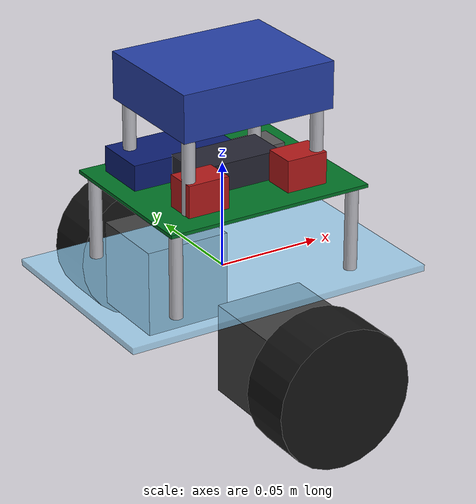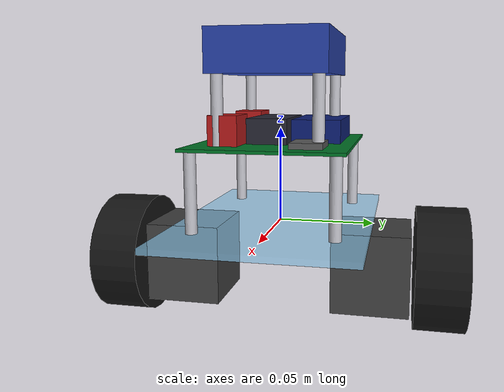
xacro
<?xml version="1.0"?>
<robot xmlns:xacro="http://www.ros.org/wiki/xacro" name="balance_robot">

  <!--                     THÔNG SỐ ROBOT (Properties)              -->

  <!-- Tấm mica (Base Plate) - 150mm x 100mm x 3mm -->
  <xacro:property name="base_length"    value="0.150"/>
  <xacro:property name="base_width"     value="0.100"/>
  <xacro:property name="base_thickness" value="0.003"/>
  <xacro:property name="base_mass"      value="0.055"/>

  <!-- Động cơ bước NEMA17 (Stepper Motor) - 42mm x 42mm x 40mm -->
  <xacro:property name="motor_face"  value="0.042"/>
  <xacro:property name="motor_depth" value="0.040"/>
  <xacro:property name="motor_mass"  value="0.280"/>

  <!-- Bánh xe cao su (Rubber Wheels) - đường kính 65mm, rộng 26mm -->
  <xacro:property name="wheel_radius" value="0.0325"/>
  <xacro:property name="wheel_width"  value="0.026"/>
  <xacro:property name="wheel_mass"   value="0.035"/>

  <!-- Trụ đỡ tầng 1 (Layer 1 Standoffs) - cao 40mm, đường kính 6mm -->
  <xacro:property name="standoff1_height" value="0.040"/>
  <xacro:property name="standoff_radius"  value="0.003"/>
  <xacro:property name="standoff_mass"    value="0.005"/>

  <!-- Trụ đỡ tầng 2 (Layer 2 Standoffs) - cao 35mm -->
  <xacro:property name="standoff2_height" value="0.035"/>

  <!-- Bảng mạch PCB + toàn bộ linh kiện (Layer 1) -->
  <!--   PCB=30g + ESP32=10g + MPU6050=3g + 2xA4988=30g + LM2596=12g = 85g -->
  <xacro:property name="pcb_length"       value="0.100"/>
  <xacro:property name="pcb_width"        value="0.080"/>
  <xacro:property name="pcb_thickness"    value="0.0016"/>
  <xacro:property name="electronics_mass" value="0.085"/>

  <!-- Khung pin + 2x Pin 18650 (Battery - Layer 2) -->
  <xacro:property name="battery_length" value="0.075"/>
  <xacro:property name="battery_width"  value="0.060"/>
  <xacro:property name="battery_height" value="0.022"/>
  <xacro:property name="battery_mass"   value="0.120"/>

  <!-- ============ Giá trị tính toán (Derived values) ============ -->
  <xacro:property name="motor_z" value="${-(base_thickness/2 + motor_face/2)}"/>
  <xacro:property name="wheel_y_gap"        value="0.002"/>
  <xacro:property name="wheel_y_from_motor" value="${motor_depth/2 + wheel_width/2 + wheel_y_gap}"/>
  <xacro:property name="layer1_z"          value="${base_thickness/2 + standoff1_height + pcb_thickness/2}"/>
  <xacro:property name="layer2_z_from_pcb" value="${pcb_thickness/2 + standoff2_height + battery_height/2}"/>
  <xacro:property name="wheel_track" value="${2*(base_width/2 + wheel_y_from_motor)}"/>
  <xacro:property name="ground_clearance" value="${base_thickness/2 + motor_face/2 + wheel_radius}"/>

  <!--                      MÀU SẮC (Materials)                    -->

  <material name="mica_clear_blue">
    <color rgba="0.6 0.85 1.0 0.7"/>
  </material>
  <material name="motor_dark_gray">
    <color rgba="0.25 0.25 0.25 1.0"/>
  </material>
  <material name="wheel_black">
    <color rgba="0.08 0.08 0.08 1.0"/>
  </material>
  <material name="pcb_green">
    <color rgba="0.0 0.45 0.15 1.0"/>
  </material>
  <material name="esp32_navy">
    <color rgba="0.05 0.12 0.45 1.0"/>
  </material>
  <material name="component_gray">
    <color rgba="0.35 0.35 0.35 1.0"/>
  </material>
  <material name="driver_red">
    <color rgba="0.7 0.1 0.1 1.0"/>
  </material>
  <material name="battery_blue">
    <color rgba="0.15 0.25 0.65 1.0"/>
  </material>
  <material name="standoff_silver">
    <color rgba="0.75 0.75 0.78 1.0"/>
  </material>
  <material name="buck_dark">
    <color rgba="0.15 0.15 0.2 1.0"/>
  </material>

  <!--                   MACRO QUÁN TÍNH (Inertia)                  -->

  <xacro:macro name="box_inertia" params="m x y z">
    <inertial>
      <mass value="${m}"/>
      <inertia ixx="${m/12*(y*y+z*z)}" ixy="0.0" ixz="0.0"
               iyy="${m/12*(x*x+z*z)}" iyz="0.0"
               izz="${m/12*(x*x+y*y)}"/>
    </inertial>
  </xacro:macro>

  <xacro:macro name="wheel_inertia" params="m r h">
    <inertial>
      <mass value="${m}"/>
      <inertia ixx="${m/12*(3*r*r+h*h)}" ixy="0.0" ixz="0.0"
               iyy="${m*r*r/2}"           iyz="0.0"
               izz="${m/12*(3*r*r+h*h)}"/>
    </inertial>
  </xacro:macro>

  <xacro:macro name="cylinder_inertia_z" params="m r h">
    <inertial>
      <mass value="${m}"/>
      <inertia ixx="${m/12*(3*r*r+h*h)}" ixy="0.0" ixz="0.0"
               iyy="${m/12*(3*r*r+h*h)}" iyz="0.0"
               izz="${m*r*r/2}"/>
    </inertial>
  </xacro:macro>

  <!--             MACRO CỤM BÁNH XE (Wheel Assembly)              -->

  <xacro:macro name="wheel_assembly" params="side reflect">

    <!-- Motor Link (Thân động cơ bước NEMA17) -->
    <link name="${side}_motor_link">
      <visual>
        <geometry>
          <box size="${motor_face} ${motor_depth} ${motor_face}"/>
        </geometry>
        <material name="motor_dark_gray"/>
      </visual>
      <collision>
        <geometry>
          <box size="${motor_face} ${motor_depth} ${motor_face}"/>
        </geometry>
      </collision>
      <xacro:box_inertia m="${motor_mass}"
                          x="${motor_face}" y="${motor_depth}" z="${motor_face}"/>
    </link>

    <joint name="${side}_motor_joint" type="fixed">
      <parent link="base_link"/>
      <child  link="${side}_motor_link"/>
      <origin xyz="0 ${reflect * base_width/2} ${motor_z}" rpy="0 0 0"/>
    </joint>

    <!-- Wheel Link (Bánh xe cao su) -->
    <link name="${side}_wheel_link">
      <visual>
        <origin xyz="0 0 0" rpy="${pi/2} 0 0"/>
        <geometry>
          <cylinder radius="${wheel_radius}" length="${wheel_width}"/>
        </geometry>
        <material name="wheel_black"/>
      </visual>
      <collision>
        <origin xyz="0 0 0" rpy="${pi/2} 0 0"/>
        <geometry>
          <cylinder radius="${wheel_radius}" length="${wheel_width}"/>
        </geometry>
      </collision>
      <xacro:wheel_inertia m="${wheel_mass}" r="${wheel_radius}" h="${wheel_width}"/>
    </link>

    <joint name="${side}_wheel_joint" type="continuous">
      <parent link="${side}_motor_link"/>
      <child  link="${side}_wheel_link"/>
      <origin xyz="0 ${reflect * wheel_y_from_motor} 0" rpy="0 0 0"/>
      <axis xyz="0 1 0"/>
      <dynamics damping="0.005" friction="0.05"/>
    </joint>

    <!-- Gazebo: thuộc tính vật lý bánh xe -->
    <gazebo reference="${side}_wheel_link">
      <mu1>1.5</mu1>
      <mu2>1.0</mu2>
      <kp>1000000.0</kp>
      <kd>100.0</kd>
      <material>Gazebo/DarkGrey</material>
    </gazebo>

    <gazebo reference="${side}_motor_link">
      <material>Gazebo/Grey</material>
    </gazebo>

  </xacro:macro>

  <!--                 MACRO TRỤ ĐỠ (Standoff)                     -->

  <xacro:macro name="standoff_link" params="name parent_link px py pz height">
    <link name="${name}">
      <visual>
        <geometry>
          <cylinder radius="${standoff_radius}" length="${height}"/>
        </geometry>
        <material name="standoff_silver"/>
      </visual>
      <collision>
        <geometry>
          <cylinder radius="${standoff_radius}" length="${height}"/>
        </geometry>
      </collision>
      <xacro:cylinder_inertia_z m="${standoff_mass}" r="${standoff_radius}" h="${height}"/>
    </link>
    <joint name="${name}_joint" type="fixed">
      <parent link="${parent_link}"/>
      <child  link="${name}"/>
      <origin xyz="${px} ${py} ${pz}" rpy="0 0 0"/>
    </joint>
    <gazebo reference="${name}">
      <material>Gazebo/Grey</material>
    </gazebo>
  </xacro:macro>

  <!--                      THÂN ROBOT (Body)                       -->

  <!-- ====== ĐẾ: BASE LINK (Tấm mica) ====== -->
  <link name="base_link">
    <visual>
      <geometry>
        <box size="${base_length} ${base_width} ${base_thickness}"/>
      </geometry>
      <material name="mica_clear_blue"/>
    </visual>
    <collision>
      <geometry>
        <box size="${base_length} ${base_width} ${base_thickness}"/>
      </geometry>
    </collision>
    <xacro:box_inertia m="${base_mass}"
                        x="${base_length}" y="${base_width}" z="${base_thickness}"/>
  </link>

  <gazebo reference="base_link">
    <material>Gazebo/BlueTransparent</material>
  </gazebo>

  <!-- ====== CỤM BÁNH XE TRÁI VÀ PHẢI ====== -->
  <xacro:wheel_assembly side="left"  reflect="1"/>
  <xacro:wheel_assembly side="right" reflect="-1"/>

  <!-- ====== TRỤ ĐỠ TẦNG 1 (4 trụ từ đế lên PCB) ====== -->
  <xacro:property name="so1_x" value="${pcb_length/2 - 0.005}"/>
  <xacro:property name="so1_y" value="${pcb_width/2  - 0.005}"/>
  <xacro:property name="so1_z" value="${base_thickness/2 + standoff1_height/2}"/>

  <xacro:standoff_link name="standoff_l1_fl" parent_link="base_link"
      px="${so1_x}"  py="${so1_y}"  pz="${so1_z}" height="${standoff1_height}"/>
  <xacro:standoff_link name="standoff_l1_fr" parent_link="base_link"
      px="${so1_x}"  py="${-so1_y}" pz="${so1_z}" height="${standoff1_height}"/>
  <xacro:standoff_link name="standoff_l1_bl" parent_link="base_link"
      px="${-so1_x}" py="${so1_y}"  pz="${so1_z}" height="${standoff1_height}"/>
  <xacro:standoff_link name="standoff_l1_br" parent_link="base_link"
      px="${-so1_x}" py="${-so1_y}" pz="${so1_z}" height="${standoff1_height}"/>

  <!-- ====== TẦNG 1: PCB + LINH KIỆN ĐIỆN TỬ ====== -->
  <link name="pcb_link">
    <!-- Bảng đồng PCB -->
    <visual>
      <geometry>
        <box size="${pcb_length} ${pcb_width} ${pcb_thickness}"/>
      </geometry>
      <material name="pcb_green"/>
    </visual>

    <!-- ESP32 DevKit Module (~51mm x 26mm x 12mm) -->
    <visual>
      <origin xyz="-0.015 0.020 ${pcb_thickness/2 + 0.006}" rpy="0 0 0"/>
      <geometry>
        <box size="0.051 0.026 0.012"/>
      </geometry>
      <material name="esp32_navy"/>
    </visual>

    <!-- MPU6050 Breakout Board (~21mm x 16mm x 3mm) -->
    <visual>
      <origin xyz="0.030 0.020 ${pcb_thickness/2 + 0.0015}" rpy="0 0 0"/>
      <geometry>
        <box size="0.021 0.016 0.003"/>
      </geometry>
      <material name="component_gray"/>
    </visual>

    <!-- Mạch điều khiển động cơ 1 - A4988 (~20mm x 15mm x 15mm) -->
    <visual>
      <origin xyz="-0.025 -0.022 ${pcb_thickness/2 + 0.0075}" rpy="0 0 0"/>
      <geometry>
        <box size="0.020 0.015 0.015"/>
      </geometry>
      <material name="driver_red"/>
    </visual>

    <!-- Mạch điều khiển động cơ 2 - A4988 (~20mm x 15mm x 15mm) -->
    <visual>
      <origin xyz="0.025 -0.022 ${pcb_thickness/2 + 0.0075}" rpy="0 0 0"/>
      <geometry>
        <box size="0.020 0.015 0.015"/>
      </geometry>
      <material name="driver_red"/>
    </visual>

    <!-- Mạch giảm áp LM2596 (~43mm x 21mm x 13mm) -->
    <visual>
      <origin xyz="0.000 -0.003 ${pcb_thickness/2 + 0.0065}" rpy="0 0 0"/>
      <geometry>
        <box size="0.043 0.021 0.013"/>
      </geometry>
      <material name="buck_dark"/>
    </visual>

    <!-- Collision đơn giản -->
    <collision>
      <origin xyz="0 0 0.009" rpy="0 0 0"/>
      <geometry>
        <box size="${pcb_length} ${pcb_width} 0.022"/>
      </geometry>
    </collision>

    <xacro:box_inertia m="${electronics_mass}"
                        x="${pcb_length}" y="${pcb_width}" z="0.022"/>
  </link>

  <joint name="pcb_joint" type="fixed">
    <parent link="base_link"/>
    <child  link="pcb_link"/>
    <origin xyz="0 0 ${layer1_z}" rpy="0 0 0"/>
  </joint>

  <gazebo reference="pcb_link">
    <material>Gazebo/Green</material>
  </gazebo>

  <!-- ====== IMU LINK (Khung tọa độ cảm biến MPU6050) ====== -->
  <link name="imu_link">
    <inertial>
      <mass value="0.001"/>
      <inertia ixx="0.0000001" ixy="0.0" ixz="0.0"
               iyy="0.0000001" iyz="0.0"
               izz="0.0000001"/>
    </inertial>
  </link>

  <joint name="imu_joint" type="fixed">
    <parent link="pcb_link"/>
    <child  link="imu_link"/>
    <origin xyz="0.030 0.020 ${pcb_thickness/2 + 0.003}" rpy="0 0 0"/>
  </joint>

  <gazebo reference="imu_joint">
    <preserveFixedJoint>true</preserveFixedJoint>
  </gazebo>

  <!-- ====== TRỤ ĐỠ TẦNG 2 (4 trụ từ PCB lên khung pin) ====== -->
  <xacro:property name="so2_x" value="${battery_length/2 - 0.005}"/>
  <xacro:property name="so2_y" value="${battery_width/2  - 0.005}"/>
  <xacro:property name="so2_z" value="${pcb_thickness/2 + standoff2_height/2}"/>

  <xacro:standoff_link name="standoff_l2_fl" parent_link="pcb_link"
      px="${so2_x}"  py="${so2_y}"  pz="${so2_z}" height="${standoff2_height}"/>
  <xacro:standoff_link name="standoff_l2_fr" parent_link="pcb_link"
      px="${so2_x}"  py="${-so2_y}" pz="${so2_z}" height="${standoff2_height}"/>
  <xacro:standoff_link name="standoff_l2_bl" parent_link="pcb_link"
      px="${-so2_x}" py="${so2_y}"  pz="${so2_z}" height="${standoff2_height}"/>
  <xacro:standoff_link name="standoff_l2_br" parent_link="pcb_link"
      px="${-so2_x}" py="${-so2_y}" pz="${so2_z}" height="${standoff2_height}"/>

  <!-- ====== TẦNG 2: KHUNG PIN + PIN 18650 ====== -->
  <link name="battery_link">
    <visual>
      <geometry>
        <box size="${battery_length} ${battery_width} ${battery_height}"/>
      </geometry>
      <material name="battery_blue"/>
    </visual>
    <collision>
      <geometry>
        <box size="${battery_length} ${battery_width} ${battery_height}"/>
      </geometry>
    </collision>
    <xacro:box_inertia m="${battery_mass}"
                        x="${battery_length}" y="${battery_width}" z="${battery_height}"/>
  </link>

  <joint name="battery_joint" type="fixed">
    <parent link="pcb_link"/>
    <child  link="battery_link"/>
    <origin xyz="0 0 ${layer2_z_from_pcb}" rpy="0 0 0"/>
  </joint>

  <gazebo reference="battery_link">
    <material>Gazebo/Blue</material>
  </gazebo>

  <!--                  GAZEBO PLUGINS (ROS2 Foxy)                  -->

  <!--
    CẢM BIẾN IMU (MPU6050)
    Topic xuất: /imu/data  (sensor_msgs/msg/Imu)
    Tần số: 100 Hz
  -->
  <gazebo reference="imu_link">
    <gravity>true</gravity>
    <sensor name="imu_sensor" type="imu">
      <always_on>true</always_on>
      <update_rate>100</update_rate>
      <visualize>true</visualize>
      <plugin name="imu_plugin" filename="libgazebo_ros_imu_sensor.so">
        <ros>
          <namespace>/</namespace>
          <remapping>~/out:=imu/data</remapping>
        </ros>
        <initial_orientation_as_reference>false</initial_orientation_as_reference>
      </plugin>
    </sensor>
  </gazebo>

  <!--
    ĐIỀU KHIỂN DIFFERENTIAL DRIVE (2 Động cơ bước)
    Topic nhận lệnh: /cmd_vel  (geometry_msgs/msg/Twist)
    Topic xuất:       /odom     (nav_msgs/msg/Odometry)
  -->
  <gazebo>
    <plugin name="diff_drive_controller" filename="libgazebo_ros_diff_drive.so">
      <ros>
        <namespace>/</namespace>
      </ros>
      <left_joint>left_wheel_joint</left_joint>
      <right_joint>right_wheel_joint</right_joint>
      <wheel_separation>${wheel_track}</wheel_separation>
      <wheel_diameter>${2*wheel_radius}</wheel_diameter>
      <max_wheel_torque>5.0</max_wheel_torque>
      <max_wheel_acceleration>30.0</max_wheel_acceleration>
      <publish_odom>true</publish_odom>
      <publish_odom_tf>true</publish_odom_tf>
      <publish_wheel_tf>true</publish_wheel_tf>
      <odometry_frame>odom</odometry_frame>
      <robot_base_frame>base_link</robot_base_frame>
      <command_topic>cmd_vel</command_topic>
      <odometry_topic>odom</odometry_topic>
    </plugin>
  </gazebo>

  <!--
    JOINT STATE PUBLISHER
    Topic xuất: /joint_states  (sensor_msgs/msg/JointState)
  -->
  <gazebo>
    <plugin name="joint_state_publisher" filename="libgazebo_ros_joint_state_publisher.so">
      <ros>
        <namespace>/</namespace>
        <remapping>~/out:=joint_states</remapping>
      </ros>
      <update_rate>50</update_rate>
      <joint_name>left_wheel_joint</joint_name>
      <joint_name>right_wheel_joint</joint_name>
    </plugin>
  </gazebo>

</robot>
